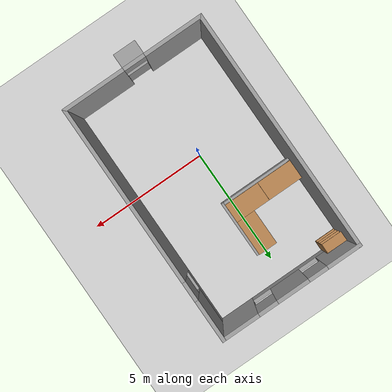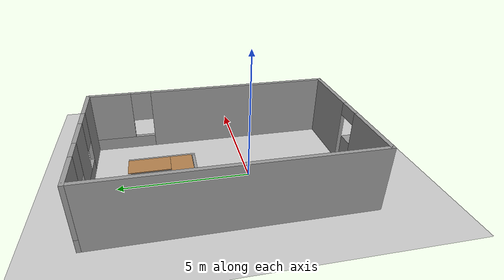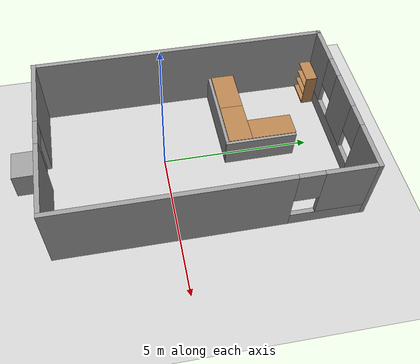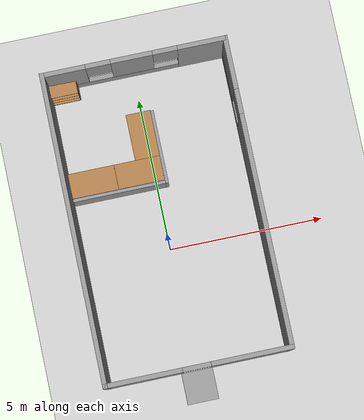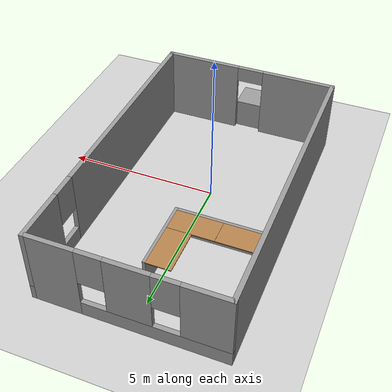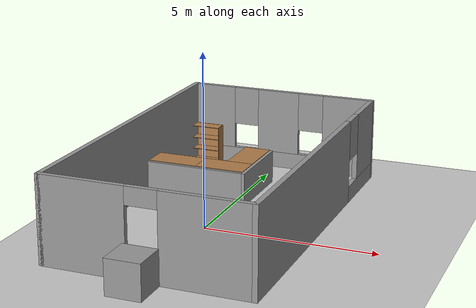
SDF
<sdf version="1.7">
 <world name="default">
  <model name="ground_plane">
   <static>1</static>
   <link name="link">
    <collision name="collision">
     <geometry><plane><normal>0 0 1</normal><size>100 100</size></plane></geometry>
     <surface>
      <contact><collide_bitmask>65535</collide_bitmask></contact>
      <friction><ode><mu>100</mu><mu2>50</mu2></ode></friction>
     </surface>
    </collision>
    <visual name="visual">
     <cast_shadows>0</cast_shadows>
     <geometry><plane><normal>0 0 1</normal><size>100 100</size></plane></geometry>
     <material>
      <script><uri>file://media/materials/scripts/gazebo.material</uri><name>Gazebo/Grey</name></script>
     </material>
    </visual>
   </link>
  </model>
  <model name="Office">
   <pose>0.11444 1.00797 0 0 -0 0</pose>
   <link name="Wall_19">
    <collision name="Wall_19_Collision">
     <geometry><box><size>10 0.15 2.5</size></box></geometry>
     <pose>0 0 1.25 0 -0 0</pose>
    </collision>
    <visual name="Wall_19_Visual">
     <pose>0 0 1.25 0 -0 0</pose>
     <geometry><box><size>10 0.15 2.5</size></box></geometry>
     <material>
      <script><uri>file://media/materials/scripts/gazebo.material</uri><name>Gazebo/Grey</name></script>
      <ambient>1 1 1 1</ambient>
     </material>
     <meta><layer>0</layer></meta>
    </visual>
    <pose>-2.925 -0 0 0 -0 -1.5708</pose>
   </link>
   <link name="Wall_20">
    <pose>0 -4.925 0 0 -0 0</pose>
    <visual name="Wall_20_Visual_0">
     <pose>-1.75498 0 1.25 0 -0 0</pose>
     <geometry><box><size>2.49004 0.15 2.5</size></box></geometry>
     <material>
      <script><uri>file://media/materials/scripts/gazebo.material</uri><name>Gazebo/Grey</name></script>
      <ambient>1 1 1 1</ambient>
     </material>
     <meta><layer>0</layer></meta>
    </visual>
    <collision name="Wall_20_Collision_0">
     <geometry><box><size>2.49004 0.15 2.5</size></box></geometry>
     <pose>-1.75498 0 1.25 0 -0 0</pose>
    </collision>
    <visual name="Wall_20_Visual_1">
     <pose>1.69502 0 1.25 0 -0 0</pose>
     <geometry><box><size>2.60996 0.15 2.5</size></box></geometry>
     <material>
      <script><uri>file://media/materials/scripts/gazebo.material</uri><name>Gazebo/Grey</name></script>
      <ambient>1 1 1 1</ambient>
     </material>
     <meta><layer>0</layer></meta>
    </visual>
    <collision name="Wall_20_Collision_1">
     <geometry><box><size>2.60996 0.15 2.5</size></box></geometry>
     <pose>1.69502 0 1.25 0 -0 0</pose>
    </collision>
    <visual name="Wall_20_Visual_2">
     <pose>-0.05996 0 2.25 0 -0 0</pose>
     <geometry><box><size>0.9 0.15 0.5</size></box></geometry>
     <material>
      <script><uri>file://media/materials/scripts/gazebo.material</uri><name>Gazebo/Grey</name></script>
      <ambient>1 1 1 1</ambient>
     </material>
     <meta><layer>0</layer></meta>
    </visual>
    <collision name="Wall_20_Collision_2">
     <geometry><box><size>0.9 0.15 0.5</size></box></geometry>
     <pose>-0.05996 0 2.25 0 -0 0</pose>
    </collision>
   </link>
   <link name="Wall_21">
    <pose>2.925 -0 0 0 -0 1.5708</pose>
    <visual name="Wall_21_Visual_0">
     <pose>-1.26886 0 1.25 0 -0 0</pose>
     <geometry><box><size>7.46229 0.15 2.5</size></box></geometry>
     <material>
      <script><uri>file://media/materials/scripts/gazebo.material</uri><name>Gazebo/Grey</name></script>
      <ambient>1 1 1 1</ambient>
     </material>
     <meta><layer>0</layer></meta>
    </visual>
    <collision name="Wall_21_Collision_0">
     <geometry><box><size>7.46229 0.15 2.5</size></box></geometry>
     <pose>-1.26886 0 1.25 0 -0 0</pose>
    </collision>
    <visual name="Wall_21_Visual_1">
     <pose>3.73115 0 0.25 0 -0 0</pose>
     <geometry><box><size>2.53771 0.15 0.5</size></box></geometry>
     <material>
      <script><uri>file://media/materials/scripts/gazebo.material</uri><name>Gazebo/Grey</name></script>
      <ambient>1 1 1 1</ambient>
     </material>
     <meta><layer>0</layer></meta>
    </visual>
    <collision name="Wall_21_Collision_1">
     <geometry><box><size>2.53771 0.15 0.5</size></box></geometry>
     <pose>3.73115 0 0.25 0 -0 0</pose>
    </collision>
    <visual name="Wall_21_Visual_2">
     <pose>4.13115 0 1.5 0 -0 0</pose>
     <geometry><box><size>1.73771 0.15 2</size></box></geometry>
     <material>
      <script><uri>file://media/materials/scripts/gazebo.material</uri><name>Gazebo/Grey</name></script>
      <ambient>1 1 1 1</ambient>
     </material>
     <meta><layer>0</layer></meta>
    </visual>
    <collision name="Wall_21_Collision_2">
     <geometry><box><size>1.73771 0.15 2</size></box></geometry>
     <pose>4.13115 0 1.5 0 -0 0</pose>
    </collision>
    <visual name="Wall_21_Visual_3">
     <pose>2.86229 0 1.9 0 -0 0</pose>
     <geometry><box><size>0.8 0.15 1.2</size></box></geometry>
     <material>
      <script><uri>file://media/materials/scripts/gazebo.material</uri><name>Gazebo/Grey</name></script>
      <ambient>1 1 1 1</ambient>
     </material>
     <meta><layer>0</layer></meta>
    </visual>
    <collision name="Wall_21_Collision_3">
     <geometry><box><size>0.8 0.15 1.2</size></box></geometry>
     <pose>2.86229 0 1.9 0 -0 0</pose>
    </collision>
   </link>
   <link name="Wall_22">
    <pose>0 4.925 0 0 -0 3.14159</pose>
    <visual name="Wall_22_Visual_0">
     <pose>-2.1977 0 1.25 0 -0 0</pose>
     <geometry><box><size>1.6046 0.15 2.5</size></box></geometry>
     <material>
      <script><uri>file://media/materials/scripts/gazebo.material</uri><name>Gazebo/Grey</name></script>
      <ambient>1 1 1 1</ambient>
     </material>
     <meta><layer>0</layer></meta>
    </visual>
    <collision name="Wall_22_Collision_0">
     <geometry><box><size>1.6046 0.15 2.5</size></box></geometry>
     <pose>-2.1977 0 1.25 0 -0 0</pose>
    </collision>
    <visual name="Wall_22_Visual_1">
     <pose>0.802298 0 0.25 0 -0 0</pose>
     <geometry><box><size>4.3954 0.15 0.5</size></box></geometry>
     <material>
      <script><uri>file://media/materials/scripts/gazebo.material</uri><name>Gazebo/Grey</name></script>
      <ambient>1 1 1 1</ambient>
     </material>
     <meta><layer>0</layer></meta>
    </visual>
    <collision name="Wall_22_Collision_1">
     <geometry><box><size>4.3954 0.15 0.5</size></box></geometry>
     <pose>0.802298 0 0.25 0 -0 0</pose>
    </collision>
    <visual name="Wall_22_Visual_2">
     <pose>0.077549 0 1.5 0 -0 0</pose>
     <geometry><box><size>1.3459 0.15 2</size></box></geometry>
     <material>
      <script><uri>file://media/materials/scripts/gazebo.material</uri><name>Gazebo/Grey</name></script>
      <ambient>1 1 1 1</ambient>
     </material>
     <meta><layer>0</layer></meta>
    </visual>
    <collision name="Wall_22_Collision_2">
     <geometry><box><size>1.3459 0.15 2</size></box></geometry>
     <pose>0.077549 0 1.5 0 -0 0</pose>
    </collision>
    <visual name="Wall_22_Visual_3">
     <pose>2.27525 0 1.5 0 -0 0</pose>
     <geometry><box><size>1.4495 0.15 2</size></box></geometry>
     <material>
      <script><uri>file://media/materials/scripts/gazebo.material</uri><name>Gazebo/Grey</name></script>
      <ambient>1 1 1 1</ambient>
     </material>
     <meta><layer>0</layer></meta>
    </visual>
    <collision name="Wall_22_Collision_3">
     <geometry><box><size>1.4495 0.15 2</size></box></geometry>
     <pose>2.27525 0 1.5 0 -0 0</pose>
    </collision>
    <visual name="Wall_22_Visual_4">
     <pose>-0.995403 0 1.9 0 -0 0</pose>
     <geometry><box><size>0.8 0.15 1.2</size></box></geometry>
     <material>
      <script><uri>file://media/materials/scripts/gazebo.material</uri><name>Gazebo/Grey</name></script>
      <ambient>1 1 1 1</ambient>
     </material>
     <meta><layer>0</layer></meta>
    </visual>
    <collision name="Wall_22_Collision_4">
     <geometry><box><size>0.8 0.15 1.2</size></box></geometry>
     <pose>-0.995403 0 1.9 0 -0 0</pose>
    </collision>
    <visual name="Wall_22_Visual_5">
     <pose>1.1505 0 1.9 0 -0 0</pose>
     <geometry><box><size>0.8 0.15 1.2</size></box></geometry>
     <material>
      <script><uri>file://media/materials/scripts/gazebo.material</uri><name>Gazebo/Grey</name></script>
      <ambient>1 1 1 1</ambient>
     </material>
     <meta><layer>0</layer></meta>
    </visual>
    <collision name="Wall_22_Collision_5">
     <geometry><box><size>0.8 0.15 1.2</size></box></geometry>
     <pose>1.1505 0 1.9 0 -0 0</pose>
    </collision>
   </link>
   <static>1</static>
  </model>
  <model name="unit_box">
   <pose>0.037269 -4.50138 0.499995 0 1e-05 0</pose>
   <link name="link">
    <inertial>
     <mass>1</mass>
     <inertia>
      <ixx>0.166667</ixx>
      <ixy>0</ixy>
      <ixz>0</ixz>
      <iyy>0.166667</iyy>
      <iyz>0</iyz>
      <izz>0.166667</izz>
     </inertia>
    </inertial>
    <collision name="collision"><geometry><box><size>1 1 1</size></box></geometry></collision>
    <visual name="visual">
     <geometry><box><size>1 1 1</size></box></geometry>
     <material>
      <script><name>Gazebo/Grey</name><uri>file://media/materials/scripts/gazebo.material</uri></script>
     </material>
    </visual>
   </link>
  </model>
  <model name="bookshelf_0">
   <static>1</static>
   <link name="link">
    <inertial><mass>1</mass></inertial>
    <collision name="back">
     <pose>0 0.005 0.6 0 -0 0</pose>
     <geometry><box><size>0.9 0.01 1.2</size></box></geometry>
    </collision>
    <visual name="visual1">
     <pose>0 0.005 0.6 0 -0 0</pose>
     <geometry><box><size>0.9 0.01 1.2</size></box></geometry>
     <material>
      <script><uri>file://media/materials/scripts/gazebo.material</uri><name>Gazebo/Wood</name></script>
     </material>
    </visual>
    <collision name="left_side">
     <pose>0.45 -0.195 0.6 0 -0 0</pose>
     <geometry><box><size>0.02 0.4 1.2</size></box></geometry>
    </collision>
    <visual name="visual2">
     <pose>0.45 -0.195 0.6 0 -0 0</pose>
     <geometry><box><size>0.02 0.4 1.2</size></box></geometry>
     <material>
      <script><uri>file://media/materials/scripts/gazebo.material</uri><name>Gazebo/Wood</name></script>
     </material>
    </visual>
    <collision name="right_side">
     <pose>-0.45 -0.195 0.6 0 -0 0</pose>
     <geometry><box><size>0.02 0.4 1.2</size></box></geometry>
    </collision>
    <visual name="visual3">
     <pose>-0.45 -0.195 0.6 0 -0 0</pose>
     <geometry><box><size>0.02 0.4 1.2</size></box></geometry>
     <material>
      <script><uri>file://media/materials/scripts/gazebo.material</uri><name>Gazebo/Wood</name></script>
     </material>
    </visual>
    <collision name="bottom">
     <pose>0 -0.195 0.03 0 -0 0</pose>
     <geometry><box><size>0.88 0.4 0.06</size></box></geometry>
    </collision>
    <visual name="visual4">
     <pose>0 -0.195 0.03 0 -0 0</pose>
     <geometry><box><size>0.88 0.4 0.06</size></box></geometry>
     <material>
      <script><uri>file://media/materials/scripts/gazebo.material</uri><name>Gazebo/Wood</name></script>
     </material>
    </visual>
    <collision name="top">
     <pose>0 -0.195 1.19 0 -0 0</pose>
     <geometry><box><size>0.88 0.4 0.02</size></box></geometry>
    </collision>
    <visual name="visual5">
     <pose>0 -0.195 1.19 0 -0 0</pose>
     <geometry><box><size>0.88 0.4 0.02</size></box></geometry>
     <material>
      <script><uri>file://media/materials/scripts/gazebo.material</uri><name>Gazebo/Wood</name></script>
     </material>
    </visual>
    <collision name="low_shelf">
     <pose>0 -0.195 0.43 0 -0 0</pose>
     <geometry><box><size>0.88 0.4 0.02</size></box></geometry>
    </collision>
    <visual name="visual6">
     <pose>0 -0.195 0.43 0 -0 0</pose>
     <geometry><box><size>0.88 0.4 0.02</size></box></geometry>
     <material>
      <script><uri>file://media/materials/scripts/gazebo.material</uri><name>Gazebo/Wood</name></script>
     </material>
    </visual>
    <collision name="high_shelf">
     <pose>0 -0.195 0.8 0 -0 0</pose>
     <geometry><box><size>0.88 0.4 0.02</size></box></geometry>
    </collision>
    <visual name="visual7">
     <pose>0 -0.195 0.8 0 -0 0</pose>
     <geometry><box><size>0.88 0.4 0.02</size></box></geometry>
     <material>
      <script><uri>file://media/materials/scripts/gazebo.material</uri><name>Gazebo/Wood</name></script>
     </material>
    </visual>
   </link>
   <pose>-2.30161 5.82782 0 0 -0 0</pose>
  </model>
  <model name="table_7">
   <model name="table_6">
    <link name="link_0">
     <inertial>
      <mass>0.303459</mass>
      <inertia>
       <ixx>0.0255487</ixx>
       <ixy>0</ixy>
       <ixz>0</ixz>
       <iyy>0.252958</iyy>
       <iyz>0</iyz>
       <izz>0.22793</izz>
      </inertia>
     </inertial>
     <pose>-0.527803 -0.738971 0.3 0 -0 0</pose>
     <visual name="visual">
      <pose>0 0 0.2 0 -0 0</pose>
      <geometry><box><size>3.0005 0.101492 1</size></box></geometry>
      <material>
       <lighting>1</lighting>
       <script><uri>file://media/materials/scripts/gazebo.material</uri><name>Gazebo/Grey</name></script>
       <shader type="pixel"/>
       <emissive>0 0 0 1</emissive>
      </material>
     </visual>
     <collision name="collision">
      <pose>0 0 0.2 0 -0 0</pose>
      <geometry><box><size>3.0005 0.101492 1</size></box></geometry>
      <surface>
       <friction>
        <ode><mu>1</mu><mu2>1</mu2><fdir1>0 0 0</fdir1><slip1>0</slip1><slip2>0</slip2></ode>
        <torsional>
         <coefficient>1</coefficient>
         <patch_radius>0</patch_radius>
         <surface_radius>0</surface_radius>
         <use_patch_radius>1</use_patch_radius>
         <ode><slip>0</slip></ode>
        </torsional>
       </friction>
       <bounce><restitution_coefficient>0</restitution_coefficient><threshold>1e+06</threshold></bounce>
       <contact>
        <collide_without_contact>0</collide_without_contact>
        <collide_without_contact_bitmask>1</collide_without_contact_bitmask>
        <collide_bitmask>1</collide_bitmask>
        <ode>
         <soft_cfm>0</soft_cfm>
         <soft_erp>0.2</soft_erp>
         <kp>1e+13</kp>
         <kd>1</kd>
         <max_vel>0.01</max_vel>
         <min_depth>0</min_depth>
        </ode>
        <bullet>
         <split_impulse>1</split_impulse>
         <split_impulse_penetration_threshold>-0.01</split_impulse_penetration_threshold>
         <soft_cfm>0</soft_cfm>
         <soft_erp>0.2</soft_erp>
         <kp>1e+13</kp>
         <kd>1</kd>
        </bullet>
       </contact>
      </surface>
     </collision>
    </link>
    <link name="link_0_clone">
     <inertial>
      <mass>0.24261</mass>
      <inertia>
       <ixx>0.0204257</ixx>
       <ixy>0</ixy>
       <ixz>0</ixz>
       <iyy>0.136557</iyy>
       <iyz>0</iyz>
       <izz>0.116548</izz>
      </inertia>
     </inertial>
     <pose>1.01932 0.409769 0.3 0 -0 1.57322</pose>
     <visual name="visual">
      <pose>0 0 0.2 0 -0 0</pose>
      <geometry><box><size>2.39884 0.101492 1</size></box></geometry>
      <material>
       <lighting>1</lighting>
       <script><uri>file://media/materials/scripts/gazebo.material</uri><name>Gazebo/Grey</name></script>
       <shader type="pixel"/>
       <emissive>0 0 0 1</emissive>
      </material>
     </visual>
     <collision name="collision">
      <pose>0 0 0.2 0 -0 0</pose>
      <geometry><box><size>2.39884 0.101492 1</size></box></geometry>
      <surface>
       <friction>
        <ode><mu>1</mu><mu2>1</mu2><fdir1>0 0 0</fdir1><slip1>0</slip1><slip2>0</slip2></ode>
        <torsional>
         <coefficient>1</coefficient>
         <patch_radius>0</patch_radius>
         <surface_radius>0</surface_radius>
         <use_patch_radius>1</use_patch_radius>
         <ode><slip>0</slip></ode>
        </torsional>
       </friction>
       <bounce><restitution_coefficient>0</restitution_coefficient><threshold>1e+06</threshold></bounce>
       <contact>
        <collide_without_contact>0</collide_without_contact>
        <collide_without_contact_bitmask>1</collide_without_contact_bitmask>
        <collide_bitmask>1</collide_bitmask>
        <ode>
         <soft_cfm>0</soft_cfm>
         <soft_erp>0.2</soft_erp>
         <kp>1e+13</kp>
         <kd>1</kd>
         <max_vel>0.01</max_vel>
         <min_depth>0</min_depth>
        </ode>
        <bullet>
         <split_impulse>1</split_impulse>
         <split_impulse_penetration_threshold>-0.01</split_impulse_penetration_threshold>
         <soft_cfm>0</soft_cfm>
         <soft_erp>0.2</soft_erp>
         <kp>1e+13</kp>
         <kd>1</kd>
        </bullet>
       </contact>
      </surface>
     </collision>
    </link>
    <model name="table">
     <static>1</static>
     <link name="link">
      <collision name="surface">
       <pose>0 0 1 0 -0 0</pose>
       <geometry><box><size>1.5 0.8 0.03</size></box></geometry>
       <surface><friction><ode><mu>0.6</mu><mu2>0.6</mu2></ode></friction></surface>
      </collision>
      <visual name="visual1">
       <pose>0 0 1 0 -0 0</pose>
       <geometry><box><size>1.5 0.8 0.03</size></box></geometry>
       <material>
        <script><uri>file://media/materials/scripts/gazebo.material</uri><name>Gazebo/Wood</name></script>
       </material>
      </visual>
     </link>
     <pose>-1.28127 -0.273662 0 0 -0 0</pose>
    </model>
    <model name="table_0">
     <static>1</static>
     <link name="link">
      <collision name="surface">
       <pose>0 0 1 0 -0 0</pose>
       <geometry><box><size>1.5 0.8 0.03</size></box></geometry>
       <surface><friction><ode><mu>0.6</mu><mu2>0.6</mu2></ode></friction></surface>
      </collision>
      <visual name="visual1">
       <pose>0 0 1 0 -0 0</pose>
       <geometry><box><size>1.5 0.8 0.03</size></box></geometry>
       <material>
        <script><uri>file://media/materials/scripts/gazebo.material</uri><name>Gazebo/Wood</name></script>
       </material>
      </visual>
     </link>
     <pose>0.219703 -0.273508 0 0 -0 0</pose>
    </model>
    <model name="table_1">
     <static>1</static>
     <link name="link">
      <collision name="surface">
       <pose>0 0 1 0 -0 0</pose>
       <geometry><box><size>1.5 0.8 0.03</size></box></geometry>
       <surface><friction><ode><mu>0.6</mu><mu2>0.6</mu2></ode></friction></surface>
      </collision>
      <visual name="visual1">
       <pose>0 0 1 0 -0 0</pose>
       <geometry><box><size>1.5 0.8 0.03</size></box></geometry>
       <material>
        <script><uri>file://media/materials/scripts/gazebo.material</uri><name>Gazebo/Wood</name></script>
       </material>
      </visual>
     </link>
     <pose>0.570046 0.876371 0 0 -0 1.57061</pose>
    </model>
    <joint name="link_0_JOINT_1" type="fixed">
     <parent>link_0</parent>
     <child>table_0::link</child>
     <physics>
      <ode><limit><cfm>0</cfm><erp>0.2</erp></limit><suspension><cfm>0</cfm><erp>0.2</erp></suspension></ode>
     </physics>
    </joint>
    <joint name="link_0_clone_JOINT_3" type="fixed">
     <parent>link_0_clone</parent>
     <child>table_0::link</child>
     <physics>
      <ode><limit><cfm>0</cfm><erp>0.2</erp></limit><suspension><cfm>0</cfm><erp>0.2</erp></suspension></ode>
     </physics>
    </joint>
    <joint name="link_0_clone_JOINT_4" type="fixed">
     <parent>link_0_clone</parent>
     <child>link_0</child>
     <physics>
      <ode><limit><cfm>0</cfm><erp>0.2</erp></limit><suspension><cfm>0</cfm><erp>0.2</erp></suspension></ode>
     </physics>
    </joint>
    <joint name="link_0_clone_JOINT_5" type="fixed">
     <parent>link_0_clone</parent>
     <child>table_1::link</child>
     <physics>
      <ode><limit><cfm>0</cfm><erp>0.2</erp></limit><suspension><cfm>0</cfm><erp>0.2</erp></suspension></ode>
     </physics>
    </joint>
    <joint name="link_JOINT_0" type="fixed">
     <parent>table::link</parent>
     <child>link_0</child>
     <physics>
      <ode><limit><cfm>0</cfm><erp>0.2</erp></limit><suspension><cfm>0</cfm><erp>0.2</erp></suspension></ode>
     </physics>
    </joint>
    <joint name="link_JOINT_2" type="fixed">
     <parent>table::link</parent>
     <child>table_0::link</child>
     <physics>
      <ode><limit><cfm>0</cfm><erp>0.2</erp></limit><suspension><cfm>0</cfm><erp>0.2</erp></suspension></ode>
     </physics>
    </joint>
    <joint name="link_JOINT_6" type="fixed">
     <parent>table_1::link</parent>
     <child>table_0::link</child>
     <physics>
      <ode><limit><cfm>0</cfm><erp>0.2</erp></limit><suspension><cfm>0</cfm><erp>0.2</erp></suspension></ode>
     </physics>
    </joint>
    <joint name="link_JOINT_7" type="fixed">
     <parent>table_1::link</parent>
     <child>table::link</child>
     <physics>
      <ode><limit><cfm>0</cfm><erp>0.2</erp></limit><suspension><cfm>0</cfm><erp>0.2</erp></suspension></ode>
     </physics>
    </joint>
    <static>0</static>
    <pose>-0.496127 -0.006347 0 0 -0 0</pose>
   </model>
   <joint name="link_0_JOINT_11" type="fixed">
    <parent>table_6::link_0</parent>
    <child>table_6::link_0_clone</child>
    <physics>
     <ode><limit><cfm>0</cfm><erp>0.2</erp></limit><suspension><cfm>0</cfm><erp>0.2</erp></suspension></ode>
    </physics>
   </joint>
   <joint name="link_0_JOINT_13" type="fixed">
    <parent>table_6::link_0</parent>
    <child>table_6::table::link</child>
    <physics>
     <ode><limit><cfm>0</cfm><erp>0.2</erp></limit><suspension><cfm>0</cfm><erp>0.2</erp></suspension></ode>
    </physics>
   </joint>
   <joint name="link_0_JOINT_15" type="fixed">
    <parent>table_6::link_0</parent>
    <child>table_6::table_0::link</child>
    <physics>
     <ode><limit><cfm>0</cfm><erp>0.2</erp></limit><suspension><cfm>0</cfm><erp>0.2</erp></suspension></ode>
    </physics>
   </joint>
   <joint name="link_0_clone_JOINT_12" type="fixed">
    <parent>table_6::link_0_clone</parent>
    <child>table_6::link_0</child>
    <physics>
     <ode><limit><cfm>0</cfm><erp>0.2</erp></limit><suspension><cfm>0</cfm><erp>0.2</erp></suspension></ode>
    </physics>
   </joint>
   <joint name="link_0_clone_JOINT_16" type="fixed">
    <parent>table_6::link_0_clone</parent>
    <child>table_6::table_1::link</child>
    <physics>
     <ode><limit><cfm>0</cfm><erp>0.2</erp></limit><suspension><cfm>0</cfm><erp>0.2</erp></suspension></ode>
    </physics>
   </joint>
   <static>0</static>
   <pose>-0.183794 2.8263 0 0 -0 0</pose>
  </model>
 </world>
</sdf>
